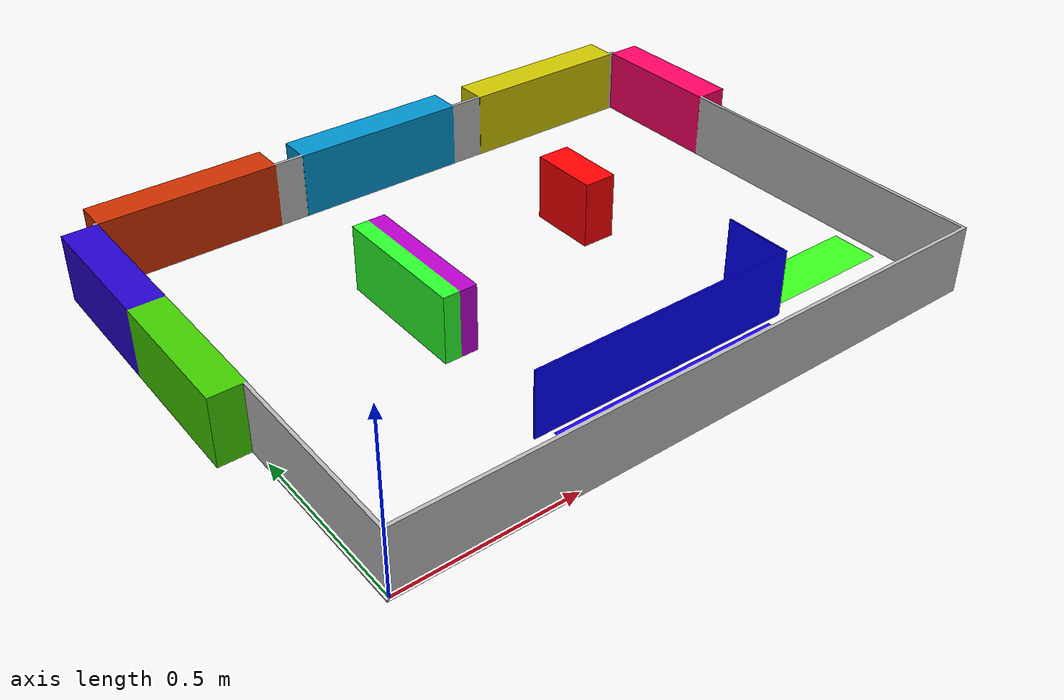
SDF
<?xml version="1.0" ?>
<sdf version="1.8">
  <model name="shop">
    <static>true</static>
    <link name="link">
      <pose>0 0 0 0 0 0</pose>
      <visual name="visual">
        <geometry>
          <mesh>
            <uri>meshes/shop.dae</uri>
            <scale>1 1 1</scale>
          </mesh>
        </geometry>
      </visual>

      <!-- Perimeter walls -->
      <collision name="wall_south">
        <pose>0.898182 -0.00499 0.175 0 0 0</pose>
        <geometry>
          <box>
            <size>1.796364 0.02 0.35</size>
          </box>
        </geometry>
      </collision>
      <collision name="wall_north">
        <pose>0.898165 1.402159 0.175 0 0 0</pose>
        <geometry>
          <box>
            <size>1.796364 0.02 0.35</size>
          </box>
        </geometry>
      </collision>
      <collision name="wall_west">
        <pose>-0.00499 0.698584 0.175 0 0 0</pose>
        <geometry>
          <box>
            <size>0.02 1.417131 0.35</size>
          </box>
        </geometry>
      </collision>
      <collision name="wall_east">
        <pose>1.801354 0.698584 0.175 0 0 0</pose>
        <geometry>
          <box>
            <size>0.02 1.417131 0.35</size>
          </box>
        </geometry>
      </collision>

      <!-- divider: L = thin bar along +x + thin bar along +y (local AABBs → same DAE matrix) -->
      <collision name="divider_arm_x">
        <pose>0.938081 0.202085 0.175 0 0 0</pose>
        <geometry>
          <box>
            <size>0.818344 0.02 0.35</size>
          </box>
        </geometry>
      </collision>
      <collision name="divider_arm_y">
        <pose>1.344758 0.299388 0.175 0 0 0</pose>
        <geometry>
          <box>
            <size>0.02 0.199596 0.35</size>
          </box>
        </geometry>
      </collision>

      <!-- section_* (DAE node sectinon_meat = meat) -->
      <collision name="section_meat">
        <pose>0.265956 1.445972 0.175 0 0 0</pose>
        <geometry>
          <box>
            <size>0.529941 0.099798 0.35</size>
          </box>
        </geometry>
      </collision>
      <collision name="section_seafood">
        <pose>0.882807 1.445972 0.175 0 0 0</pose>
        <geometry>
          <box>
            <size>0.530374 0.099798 0.35</size>
          </box>
        </geometry>
      </collision>
      <collision name="section_frizer">
        <pose>0.603808 0.769007 0.175 0 0 0</pose>
        <geometry>
          <box>
            <size>0.05003 0.419503 0.35</size>
          </box>
        </geometry>
      </collision>
      <collision name="section_refriger">
        <pose>0.553778 0.769007 0.175 0 0 0</pose>
        <geometry>
          <box>
            <size>0.05003 0.419503 0.35</size>
          </box>
        </geometry>
      </collision>
      <collision name="section_electronics">
        <pose>-0.048914 0.767819 0.175 0 0 0</pose>
        <geometry>
          <box>
            <size>0.099798 0.419503 0.35</size>
          </box>
        </geometry>
      </collision>
      <collision name="section_snacks">
        <pose>-0.048914 1.187322 0.175 0 0 0</pose>
        <geometry>
          <box>
            <size>0.099798 0.419503 0.35</size>
          </box>
        </geometry>
      </collision>
      <collision name="section_vegetable">
        <pose>1.518439 1.445972 0.175 0 0 0</pose>
        <geometry>
          <box>
            <size>0.540446 0.099798 0.35</size>
          </box>
        </geometry>
      </collision>
      <collision name="section_beverage">
        <pose>1.207535 0.873227 0.175 0 0 0</pose>
        <geometry>
          <box>
            <size>0.099798 0.209576 0.35</size>
          </box>
        </geometry>
      </collision>
    </link>
  </model>
</sdf>
